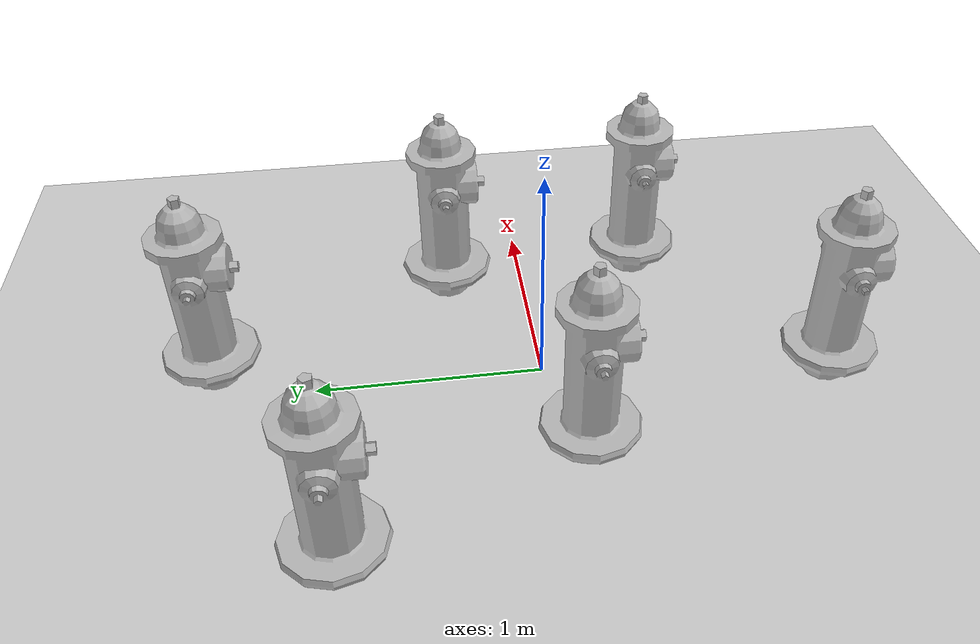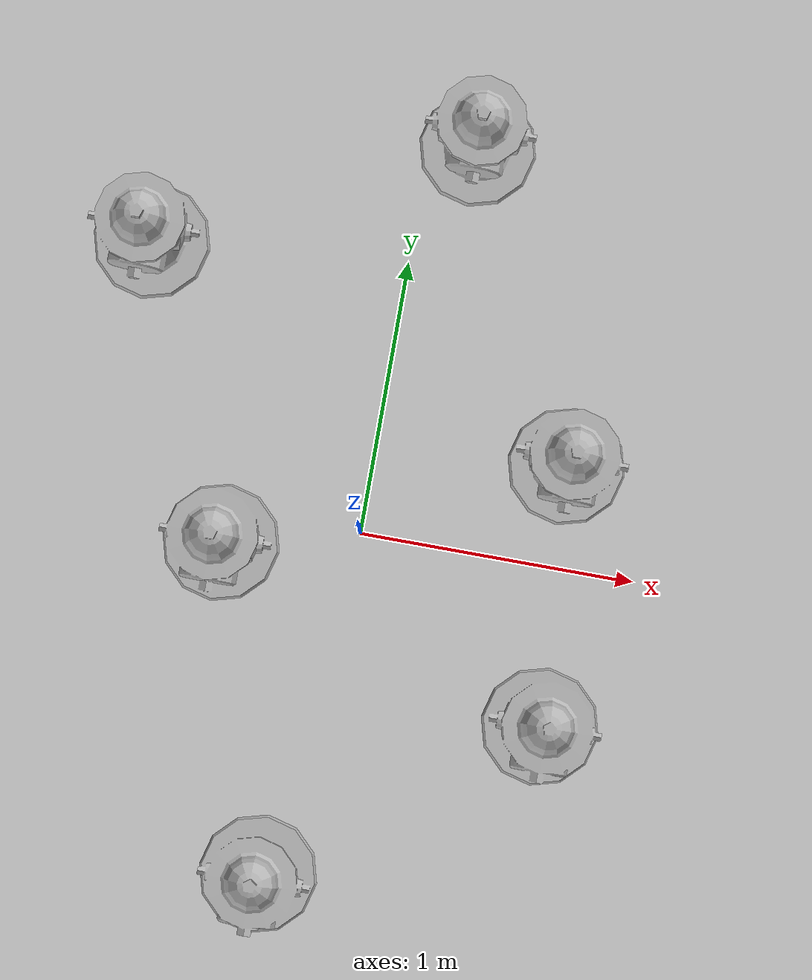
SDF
<sdf version="1.7">
 <world name="default">
  <light name="sun" type="directional">
   <pose>0 0 10 0 -0 0</pose>
   <diffuse>0.8 0.8 0.8 1</diffuse>
   <specular>0.2 0.2 0.2 1</specular>
   <attenuation>
    <range>1000</range>
    <constant>0.9</constant>
    <linear>0.01</linear>
    <quadratic>0.001</quadratic>
   </attenuation>
   <direction>-0.5 0.1 -0.9</direction>
   <spot><inner_angle>0</inner_angle><outer_angle>0</outer_angle><falloff>0</falloff></spot>
  </light>
  <model name="ground_plane">
   <static>1</static>
   <link name="link">
    <collision name="collision">
     <geometry><plane><normal>0 0 1</normal><size>100 100</size></plane></geometry>
     <surface>
      <contact><collide_bitmask>65535</collide_bitmask></contact>
      <friction><ode><mu>100</mu><mu2>50</mu2></ode></friction>
     </surface>
    </collision>
    <visual name="visual">
     <cast_shadows>0</cast_shadows>
     <geometry><plane><normal>0 0 1</normal><size>100 100</size></plane></geometry>
     <material>
      <script><uri>file://media/materials/scripts/gazebo.material</uri><name>Gazebo/Grey</name></script>
     </material>
    </visual>
   </link>
  </model>
  <gravity>0 0 -9.8</gravity>
  <magnetic_field>6e-06 2.3e-05 -4.2e-05</magnetic_field>
  <atmosphere type="adiabatic"/>
  <physics type="ode">
   <max_step_size>0.001</max_step_size>
   <real_time_factor>1</real_time_factor>
   <real_time_update_rate>1000</real_time_update_rate>
  </physics>
  <scene><ambient>0.4 0.4 0.4 1</ambient><background>0.7 0.7 0.7 1</background><shadows>1</shadows></scene>
  <spherical_coordinates>
   <surface_model>EARTH_WGS84</surface_model>
   <latitude_deg>0</latitude_deg>
   <longitude_deg>0</longitude_deg>
   <elevation>0</elevation>
   <heading_deg>0</heading_deg>
  </spherical_coordinates>
  <model name="fire_hydrant">
   <static>1</static>
   <link name="link">
    <collision name="collision">
     <geometry><mesh><uri>model://fire_hydrant/meshes/fire_hydrant.dae</uri></mesh></geometry>
    </collision>
    <visual name="visual">
     <geometry><mesh><uri>model://fire_hydrant/meshes/fire_hydrant.dae</uri></mesh></geometry>
    </visual>
   </link>
   <pose>-0.918299 0.900245 0 0 -0 0</pose>
  </model>
  <model name="fire_hydrant_0">
   <static>1</static>
   <link name="link">
    <collision name="collision">
     <geometry><mesh><uri>model://fire_hydrant/meshes/fire_hydrant.dae</uri></mesh></geometry>
    </collision>
    <visual name="visual">
     <geometry><mesh><uri>model://fire_hydrant/meshes/fire_hydrant.dae</uri></mesh></geometry>
    </visual>
   </link>
   <pose>-0.142713 -1.25918 0 0 -0 0</pose>
  </model>
  <model name="fire_hydrant_1">
   <static>1</static>
   <link name="link">
    <collision name="collision">
     <geometry><mesh><uri>model://fire_hydrant/meshes/fire_hydrant.dae</uri></mesh></geometry>
    </collision>
    <visual name="visual">
     <geometry><mesh><uri>model://fire_hydrant/meshes/fire_hydrant.dae</uri></mesh></geometry>
    </visual>
   </link>
   <pose>-0.481809 -0.122145 0 0 -0 0</pose>
  </model>
  <model name="fire_hydrant_2">
   <static>1</static>
   <link name="link">
    <collision name="collision">
     <geometry><mesh><uri>model://fire_hydrant/meshes/fire_hydrant.dae</uri></mesh></geometry>
    </collision>
    <visual name="visual">
     <geometry><mesh><uri>model://fire_hydrant/meshes/fire_hydrant.dae</uri></mesh></geometry>
    </visual>
   </link>
   <pose>0.751859 -0.570189 0 0 -0 0</pose>
  </model>
  <model name="fire_hydrant_3">
   <static>1</static>
   <link name="link">
    <collision name="collision">
     <geometry><mesh><uri>model://fire_hydrant/meshes/fire_hydrant.dae</uri></mesh></geometry>
    </collision>
    <visual name="visual">
     <geometry><mesh><uri>model://fire_hydrant/meshes/fire_hydrant.dae</uri></mesh></geometry>
    </visual>
   </link>
   <pose>0.6848 0.3604 0 0 -0 0</pose>
  </model>
  <model name="fire_hydrant_4">
   <static>1</static>
   <link name="link">
    <collision name="collision">
     <geometry><mesh><uri>model://fire_hydrant/meshes/fire_hydrant.dae</uri></mesh></geometry>
    </collision>
    <visual name="visual">
     <geometry><mesh><uri>model://fire_hydrant/meshes/fire_hydrant.dae</uri></mesh></geometry>
    </visual>
   </link>
   <pose>0.17463 1.43218 0 0 -0 0</pose>
  </model>
 </world>
</sdf>
